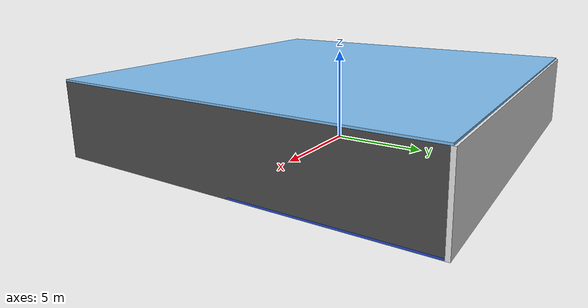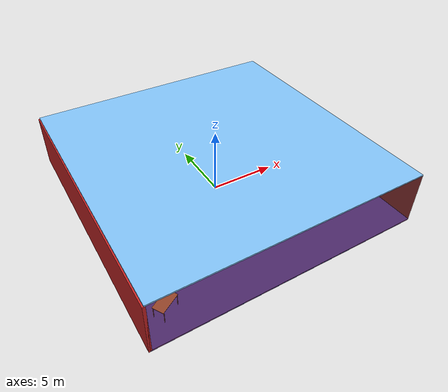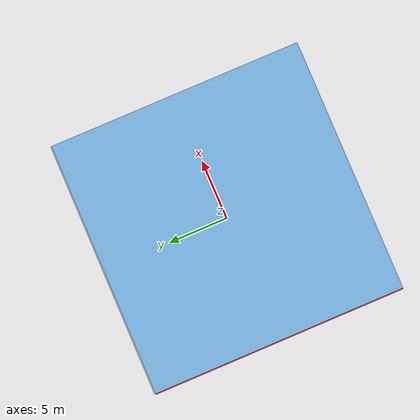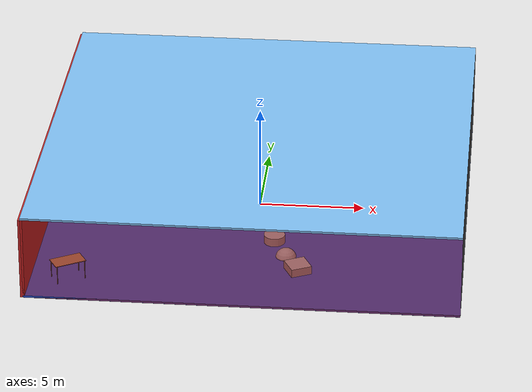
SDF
<sdf version="1.4">
 <world name="default">
  <physics type="ode">
   <max_step_size>0.001</max_step_size>
   <real_time_factor>1</real_time_factor>
   <real_time_update_rate>1000</real_time_update_rate>
   <gravity>0 0 -9.8</gravity>
  </physics>
  <scene><ambient>0.4 0.4 0.4 1</ambient><background>0.7 0.7 0.7 1</background><shadows>1</shadows></scene>
  <model name="Surrounding">
   <static>1</static>
   <link name="Ceiling">
    <collision name="Ceiling_Collision"><geometry><box><size>20 20 0.1</size></box></geometry></collision>
    <visual name="Ceiling_Visual">
     <geometry><box><size>20 20 0.1</size></box></geometry>
     <material>
      <script><uri>file://media/materials/scripts/gazebo.material</uri><name>Gazebo/SkyBlue</name></script>
     </material>
    </visual>
    <pose>0 0 4.05 0 0 0</pose>
   </link>
   <link name="Wall_South">
    <collision name="Wall_South_Collision">
     <geometry><box><size>20 0 4</size></box></geometry>
     <pose>0 0 2 0 -0 0</pose>
    </collision>
    <visual name="Wall_South_Visual">
     <pose>0 0 2 0 -0 0</pose>
     <geometry><box><size>20 0 4</size></box></geometry>
     <material>
      <script><uri>file://media/materials/scripts/gazebo.material</uri><name>Gazebo/RedTransparent</name></script>
     </material>
    </visual>
    <velocity_decay><linear>0</linear><angular>0</angular></velocity_decay>
    <pose>0 -10 0 0 -0 0</pose>
   </link>
   <link name="Wall_East">
    <collision name="Wall_21_Collision">
     <geometry><box><size>20 0 4</size></box></geometry>
     <pose>0 0 2 0 -0 0</pose>
    </collision>
    <visual name="Wall_21_Visual">
     <pose>0 0 2 0 -0 0</pose>
     <geometry><box><size>20 0 4</size></box></geometry>
     <material>
      <script><uri>file://media/materials/scripts/gazebo.material</uri><name>Gazebo/DarkGrey</name></script>
     </material>
    </visual>
    <velocity_decay><linear>0</linear><angular>0</angular></velocity_decay>
    <pose>10 0 0 0 -0 1.5708</pose>
   </link>
   <link name="Wall_North">
    <collision name="Wall_22_Collision">
     <geometry><box><size>20 0.2 4</size></box></geometry>
     <pose>0 0 2 0 -0 0</pose>
    </collision>
    <visual name="Wall_22_Visual">
     <pose>0 0 2 0 -0 0</pose>
     <geometry><box><size>20 0.2 4</size></box></geometry>
     <material>
      <script><uri>file://media/materials/scripts/gazebo.material</uri><name>Gazebo/WhiteGlow</name></script>
     </material>
    </visual>
    <velocity_decay><linear>0</linear><angular>0</angular></velocity_decay>
    <pose>0 10 0 0 -0 0</pose>
   </link>
   <link name="Wall_West">
    <collision name="Wall_23_Collision">
     <geometry><box><size>20 0.2 4</size></box></geometry>
     <pose>0 0 2 0 -0 0</pose>
    </collision>
    <visual name="Wall_23_Visual">
     <pose>0 0 2 0 -0 0</pose>
     <geometry><box><size>20 0.2 4</size></box></geometry>
     <material>
      <script><uri>file://media/materials/scripts/gazebo.material</uri><name>Gazebo/RedGlow</name></script>
     </material>
    </visual>
    <velocity_decay><linear>0</linear><angular>0</angular></velocity_decay>
    <pose>-10 0 0 0 0 -1.5708</pose>
   </link>
   <link name="Ground_link">
    <collision name="collision">
     <pose>0 0 .05 0 -0 0</pose>
     <geometry><box><size>20 20 0.1</size></box></geometry>
    </collision>
    <visual name="visual">
     <pose>0 0 .05 0 -0 0</pose>
     <geometry><box><size>20 20 0.1</size></box></geometry>
     <material>
      <script><uri>file://media/materials/scripts/gazebo.material</uri><name>Gazebo/BlueGlow</name></script>
     </material>
    </visual>
   </link>
   <static>1</static>
  </model>
  <spherical_coordinates>
   <surface_model>EARTH_WGS84</surface_model>
   <latitude_deg>0</latitude_deg>
   <longitude_deg>0</longitude_deg>
   <elevation>0</elevation>
   <heading_deg>0</heading_deg>
  </spherical_coordinates>
  <light name="lightball_0" type="diffuse">
   <diffuse>0.8 0.8 0.8 1</diffuse>
   <specular>0.2 0.2 0.2 1</specular>
   <attenuation>
    <range>100</range>
    <constant>0.7</constant>
    <linear>0.01</linear>
    <quadratic>0.001</quadratic>
   </attenuation>
   <direction>-0.5 0.1 -0.9</direction>
   <pose>2.45157503058 -3.46443720186 1.06688064698 0 0 0</pose>
  </light>
  <light name="lightball_1" type="diffuse">
   <diffuse>0.8 0.8 0.8 1</diffuse>
   <specular>0.2 0.2 0.2 1</specular>
   <attenuation>
    <range>100</range>
    <constant>0.7</constant>
    <linear>0.01</linear>
    <quadratic>0.001</quadratic>
   </attenuation>
   <direction>-0.5 0.1 -0.9</direction>
   <pose>6.05969473104 9.9299088451 0.509393690438 0 0 0</pose>
  </light>
  <light name="lightball_2" type="diffuse">
   <diffuse>0.8 0.8 0.8 1</diffuse>
   <specular>0.2 0.2 0.2 1</specular>
   <attenuation>
    <range>100</range>
    <constant>0.7</constant>
    <linear>0.01</linear>
    <quadratic>0.001</quadratic>
   </attenuation>
   <direction>-0.5 0.1 -0.9</direction>
   <pose>8.86574529251 -9.25338696743 3.51943937352 0 0 0</pose>
  </light>
  <light name="lightball_3" type="diffuse">
   <diffuse>0.8 0.8 0.8 1</diffuse>
   <specular>0.2 0.2 0.2 1</specular>
   <attenuation>
    <range>100</range>
    <constant>0.7</constant>
    <linear>0.01</linear>
    <quadratic>0.001</quadratic>
   </attenuation>
   <direction>-0.5 0.1 -0.9</direction>
   <pose>-5.48305699403 1.460322919 1.04732600479 0 0 0</pose>
  </light>
  <light name="lightball_4" type="diffuse">
   <diffuse>0.8 0.8 0.8 1</diffuse>
   <specular>0.2 0.2 0.2 1</specular>
   <attenuation>
    <range>100</range>
    <constant>0.7</constant>
    <linear>0.01</linear>
    <quadratic>0.001</quadratic>
   </attenuation>
   <direction>-0.5 0.1 -0.9</direction>
   <pose>8.88756703649 1.07041264133 2.43866152815 0 0 0</pose>
  </light>
  <include><uri>model://table</uri><pose>-8.16242426512 -8.13340840527 0 0 0 0.530429872428</pose></include>
  <include>
   <uri>model://textured_shapes</uri>
   <pose>1.69005477325 -5.22807308815 0 0 0 0.454821270035</pose>
  </include>
  <include><uri>model://table</uri><pose>1.09222280382 4.31543350728 0 0 0 1.65669348995</pose></include>
  <include><uri>model://cabinet</uri><pose>4.01185568921 -0.73020818864 0 0 0 1.64667665554</pose></include>
  <include><uri>model://cabinet</uri><pose>4.1716575999 1.7376382446 0 0 0 2.29048747198</pose></include>
 </world>
</sdf>

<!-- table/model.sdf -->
<sdf version="1.5">
  <model name="table">
    <static>true</static>
    <link name="link">
      <collision name="surface">
        <pose>0 0 1.0 0 0 0</pose>
        <geometry>
          <box>
            <size>1.5 0.8 0.03</size>
          </box>
        </geometry>
        <surface>
          <friction>
            <ode>
              <mu>0.6</mu>
              <mu2>0.6</mu2>
            </ode>
          </friction>
        </surface>
      </collision>
      <visual name="visual1">
        <pose>0 0 1.0 0 0 0</pose>
        <geometry>
          <box>
            <size>1.5 0.8 0.03</size>
          </box>
        </geometry>
        <material>
          <script>
            <uri>model://media/materials/scripts/gazebo.material</uri>
            <name>Gazebo/Wood</name>
          </script>
        </material>
      </visual>
      <collision name="front_left_leg">
        <pose>0.68 0.38 0.5 0 0 0</pose>
        <geometry>
          <cylinder>
            <radius>0.02</radius>
            <length>1.0</length>
          </cylinder>
        </geometry>
      </collision>
      <visual name="front_left_leg">
        <pose>0.68 0.38 0.5 0 0 0</pose>
        <geometry>
          <cylinder>
            <radius>0.02</radius>
            <length>1.0</length>
          </cylinder>
        </geometry>
        <material>
          <script>
            <uri>model://media/materials/scripts/gazebo.material</uri>
            <name>Gazebo/Grey</name>
          </script>
        </material>
      </visual>
      <collision name="front_right_leg">
        <pose>0.68 -0.38 0.5 0 0 0</pose>
        <geometry>
          <cylinder>
            <radius>0.02</radius>
            <length>1.0</length>
          </cylinder>
        </geometry>
      </collision>
      <visual name="front_right_leg">
        <pose>0.68 -0.38 0.5 0 0 0</pose>
        <geometry>
          <cylinder>
            <radius>0.02</radius>
            <length>1.0</length>
          </cylinder>
        </geometry>
        <material>
          <script>
            <uri>model://media/materials/scripts/gazebo.material</uri>
            <name>Gazebo/Grey</name>
          </script>
        </material>
      </visual>
      <collision name="back_right_leg">
        <pose>-0.68 -0.38 0.5 0 0 0</pose>
        <geometry>
          <cylinder>
            <radius>0.02</radius>
            <length>1.0</length>
          </cylinder>
        </geometry>
      </collision>
      <visual name="back_right_leg">
        <pose>-0.68 -0.38 0.5 0 0 0</pose>
        <geometry>
          <cylinder>
            <radius>0.02</radius>
            <length>1.0</length>
          </cylinder>
        </geometry>
        <material>
          <script>
            <uri>model://media/materials/scripts/gazebo.material</uri>
            <name>Gazebo/Grey</name>
          </script>
        </material>
      </visual>
      <collision name="back_left_leg">
        <pose>-0.68 0.38 0.5 0 0 0</pose>
        <geometry>
          <cylinder>
            <radius>0.02</radius>
            <length>1.0</length>
          </cylinder>
        </geometry>
      </collision>
      <visual name="back_left_leg">
        <pose>-0.68 0.38 0.5 0 0 0</pose>
        <geometry>
          <cylinder>
            <radius>0.02</radius>
            <length>1.0</length>
          </cylinder>
        </geometry>
        <material>
          <script>
            <uri>model://media/materials/scripts/gazebo.material</uri>
            <name>Gazebo/Grey</name>
          </script>
        </material>
      </visual>
    </link>
  </model>
</sdf>

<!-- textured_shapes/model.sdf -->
<sdf version="1.6">
  <model name="textured_shapes">
    <pose>0 0 0.5 0 0 0</pose>
    <link name="box">
      <pose>0 -1.5 0 0 0 0</pose>
      <collision name="collision">
        <geometry>
          <box>
            <size>1 1 1</size>
          </box>
        </geometry>
      </collision>
      <visual name="visual">
        <geometry>
          <box>
            <size>1 1 1</size>
          </box>
        </geometry>
        <material>
          <script>
            <uri>model://../model_source/models/textured_shapes/materials/scripts</uri>
            <uri>model://../model_source/models/textured_shapes/materials/textures</uri>
            <name>TexturedShape/Squares</name>
          </script>
        </material>
      </visual>
    </link>
    <link name="sphere">
      <collision name="collision">
        <geometry>
          <sphere>
            <radius>0.5</radius>
          </sphere>
        </geometry>
      </collision>
      <visual name="visual">
        <geometry>
          <sphere>
            <radius>0.5</radius>
          </sphere>
        </geometry>
        <material>
          <script>
            <uri>model://../model_source/models/textured_shapes/materials/scripts</uri>
            <uri>model://../model_source/models/textured_shapes/materials/textures</uri>
            <name>TexturedShape/Squares</name>
          </script>
        </material>
      </visual>
    </link>
    <link name="cylinder">
      <pose>0 1.5 0 0 0 0</pose>
      <collision name="collision">
        <geometry>
          <cylinder>
            <radius>0.5</radius>
            <length>1</length>
          </cylinder>
        </geometry>
      </collision>
      <visual name="visual">
        <geometry>
          <cylinder>
            <radius>0.5</radius>
            <length>1</length>
          </cylinder>
        </geometry>
        <material>
          <script>
            <uri>model://../model_source/models/textured_shapes/materials/scripts</uri>
            <uri>model://../model_source/models/textured_shapes/materials/textures</uri>
            <name>TexturedShape/Squares</name>
          </script>
        </material>
      </visual>
    </link>
  </model>
</sdf>

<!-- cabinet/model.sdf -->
<sdf version="1.5">
  <model name="cabinet">
    <static>true</static>
    <link name="cabinet_bottom_plate">
      <inertial>
        <pose>0 0 -1 0 0 0</pose>
        <inertia>
          <ixx>2.050000</ixx>
          <ixy>0</ixy>
          <ixz>0</ixz>
          <iyy>2.050000</iyy>
          <iyz>0</iyz>
          <izz>2.050000</izz>
        </inertia>
        <mass>25.000000</mass>
      </inertial>
      <collision name="cabinet_bottom_plate_geom">
        <pose>0 0 0.010000 0 0 0</pose>
        <geometry>
          <box>
            <size>0.450000 0.450000 0.020000</size>
          </box>
        </geometry>
      </collision>
      <visual name="cabinet_bottom_plate_geom_visual">
        <pose>0 0 0.010000 0 0 0</pose>
        <geometry>
          <box>
            <size>0.450000 0.450000 0.020000</size>
          </box>
        </geometry>
        <material>
          <script>
            <uri>model://media/materials/scripts/gazebo.material</uri>
            <name>Gazebo/Wood</name>
          </script>
        </material>
      </visual>
      <collision name="cabinet_bottom_plate_geom_cabinet_back_plate">
        <pose>0.235000 0 0.510000 0 0 0</pose>
        <geometry>
          <box>
            <size>0.020000 0.450000 1.020000</size>
          </box>
        </geometry>
      </collision>
      <visual name="cabinet_bottom_plate_geom_cabinet_back_plate_visual">
        <pose>0.235000 0 0.510000 0 0 0</pose>
        <geometry>
          <box>
            <size>0.020000 0.450000 1.020000</size>
          </box>
        </geometry>
        <material>
          <script>
            <uri>model://media/materials/scripts/gazebo.material</uri>
            <name>Gazebo/Wood</name>
          </script>
        </material>
      </visual>
      <collision name="cabinet_bottom_plate_geom_cabinet_left_plate">
        <pose>0 0.235000 0.510000 0 0 0</pose>
        <geometry>
          <box>
            <size>0.450000 0.020000 1.020000</size>
          </box>
        </geometry>
      </collision>
      <visual name="cabinet_bottom_plate_geom_cabinet_left_plate_visual">
        <pose>0 0.235000 0.510000 0 0 0</pose>
        <geometry>
          <box>
            <size>0.450000 0.020000 1.020000</size>
          </box>
        </geometry>
        <material>
          <script>
            <uri>model://media/materials/scripts/gazebo.material</uri>
            <name>Gazebo/Wood</name>
          </script>
        </material>
      </visual>
      <collision name="cabinet_bottom_plate_geom_cabinet_middle_plate">
        <pose>0 0 0.510000 0 0 0</pose>
        <geometry>
          <box>
            <size>0.450000 0.450000 0.020000</size>
          </box>
        </geometry>
      </collision>
      <visual name="cabinet_bottom_plate_geom_cabinet_middle_plate_visual">
        <pose>0 0 0.510000 0 0 0</pose>
        <geometry>
          <box>
            <size>0.450000 0.450000 0.020000</size>
          </box>
        </geometry>
        <material>
          <script>
            <uri>model://media/materials/scripts/gazebo.material</uri>
            <name>Gazebo/Wood</name>
          </script>
        </material>
      </visual>
      <collision name="cabinet_bottom_plate_geom_cabinet_right_plate">
        <pose>0 -0.235000 0.510000 0 0 0</pose>
        <geometry>
          <box>
            <size>0.450000 0.020000 1.020000</size>
          </box>
        </geometry>
      </collision>
      <visual name="cabinet_bottom_plate_geom_cabinet_right_plate_visual">
        <pose>0 -0.235000 0.510000 0 0 0</pose>
        <geometry>
          <box>
            <size>0.450000 0.020000 1.020000</size>
          </box>
        </geometry>
        <material>
          <script>
            <uri>model://media/materials/scripts/gazebo.material</uri>
            <name>Gazebo/Wood</name>
          </script>
        </material>
      </visual>
      <collision name="cabinet_bottom_plate_geom_cabinet_top_plate">
        <pose>0 0 1.010000 0 0 0</pose>
        <geometry>
          <box>
            <size>0.450000 0.450000 0.020000</size>
          </box>
        </geometry>
      </collision>
      <visual name="cabinet_bottom_plate_geom_cabinet_top_plate_visual">
        <pose>0 0 1.010000 0 0 0</pose>
        <geometry>
          <box>
            <size>0.450000 0.450000 0.020000</size>
          </box>
        </geometry>
        <material>
          <script>
            <uri>model://media/materials/scripts/gazebo.material</uri>
            <name>Gazebo/Wood</name>
          </script>
        </material>
      </visual>
    </link>
  </model>
</sdf>
